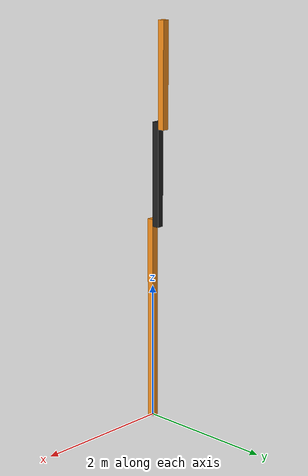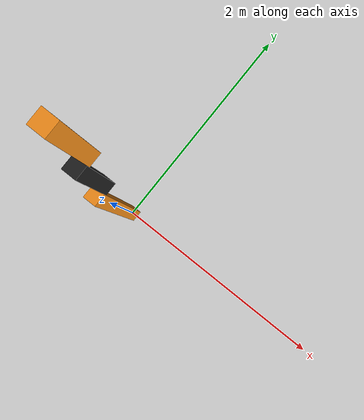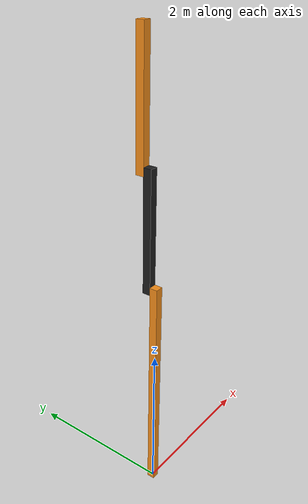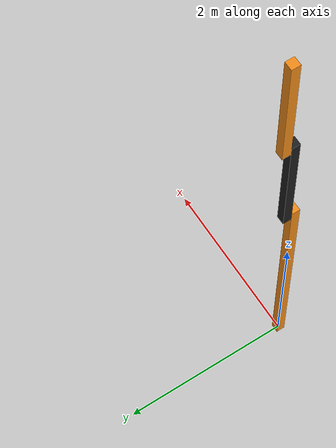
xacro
<?xml version="1.0"?>
<!-- Revolute-Revolute-Revolute Manipulator -->
<robot name="pendulum" xmlns:xacro="http://www.ros.org/wiki/xacro">

  <!-- Constants for robot dimensions -->
  <xacro:property name="PI" value="3.1415926535897931"/>
  <xacro:property name="width" value="0.1" /> <!-- Square dimensions (widthxwidth) of beams -->
  <xacro:property name="height1" value="3" /> <!-- Link 1 -->
  <xacro:property name="height2" value="1.5" /> <!-- Link 2 -->
  <xacro:property name="height3" value="1.5" /> <!-- Link 3 -->
  <xacro:property name="height4" value="1" /> <!-- Link 4 -->
  <xacro:property name="camera_link" value="0.05" /> <!-- Size of square 'camera' box -->
  <xacro:property name="axel_offset" value="0.05" /> <!-- Space btw top of beam and the each joint -->

  <!-- Import all Gazebo-customization elements, including Gazebo colors -->
  <xacro:include filename="$(find gmm_obs)/urdf/pendulum.gazebo" />
  <!-- Import Rviz colors -->
  <xacro:include filename="$(find rrbot_description)/urdf/materials.xacro" />

  <!-- Used for fixing robot to Gazebo 'base_link' -->
  <link name="world"/>

  <joint name="fixed" type="fixed">
    <parent link="world"/>
    <child link="link1"/>
  </joint>

  <!-- Base Link -->
  <link name="link1">
    <collision>
      <origin xyz="0 0 ${height1/2}" rpy="0 0 0"/>
      <geometry>
        <box size="${width} ${width} ${height1}"/>
      </geometry>
    </collision>

    <visual>
      <origin xyz="0 0 ${height1/2}" rpy="0 0 0"/>
      <geometry>
        <box size="${width} ${width} ${height1}"/>
      </geometry>
      <material name="orange"/>
    </visual>

    <inertial>
      <origin xyz="0 0 ${height1/2}" rpy="0 0 0"/>
      <mass value="1"/>
      <inertia ixx="1.0" ixy="0.0" ixz="0.0" iyy="1.0" iyz="0.0" izz="1.0"/>
    </inertial>
  </link>

  <joint name="joint1" type="continuous">
    <parent link="link1"/>
    <child link="link2"/>
    <origin xyz="0 ${width} ${height1 - axel_offset}" rpy="0 0 0"/>
    <axis xyz="0 1 0"/>
    <dynamics damping="2.0"/>
  </joint>

  <gazebo reference="link1">
    <material>Gazebo/Orange</material>
  </gazebo>

  <!-- Second Link -->
  <link name="link2">
    <collision>
      <origin xyz="0 0 ${height2/2 - axel_offset}" rpy="0 0 0"/>
      <geometry>
        <box size="${width} ${width} ${height2}"/>
      </geometry>
    </collision>

    <visual>
      <origin xyz="0 0 ${height2/2 - axel_offset}" rpy="0 0 0"/>
      <geometry>
        <box size="${width} ${width} ${height2}"/>
      </geometry>
      <material name="black"/>
    </visual>

    <inertial>
      <origin xyz="0 0 ${height2/2 - axel_offset}" rpy="0 0 0"/>
      <mass value="1"/>
      <inertia ixx="1.0" ixy="0.0" ixz="0.0" iyy="1.0" iyz="0.0" izz="1.0"/>
    </inertial>
  </link>

  <gazebo reference="link2">
    <mu1>0.2</mu1>
    <mu2>0.2</mu2>
    <material>Gazebo/Black</material>
  </gazebo>

  <joint name="joint2" type="continuous">
    <parent link="link2"/>
    <child link="link3"/>
    <origin xyz="0 ${width} ${height2 - axel_offset*2}" rpy="0 0 0"/>
    <axis xyz="0 1 0"/>
    <dynamics damping="2.0"/>
  </joint>

  <!-- Third Link -->
  <link name="link3">
    <collision name="link_collision">
      <origin xyz="0 0 ${height3/2 - axel_offset}" rpy="0 0 0"/>
      <geometry>
        <box size="${width} ${width} ${height3}"/>
      </geometry>
    </collision>

    <visual>
      <origin xyz="0 0 ${height3/2 - axel_offset}" rpy="0 0 0"/>
      <geometry>
        <box size="${width} ${width} ${height3}"/>
      </geometry>
      <material name="orange"/>
    </visual>

    <inertial>
      <origin xyz="0 0 ${height3/2 - axel_offset}" rpy="0 0 0"/>
      <mass value="1"/>
      <inertia ixx="1.0" ixy="0.0" ixz="0.0" iyy="1.0" iyz="0.0" izz="1.0"/>
    </inertial>
  </link>

  <gazebo reference="link3">
    <mu1>0.2</mu1>
    <mu2>0.2</mu2>
    <material>Gazebo/Orange</material>
  </gazebo>

  <transmission name="tran1">
    <type>transmission_interface/SimpleTransmission</type>
    <joint name="joint1">
      <hardwareInterface>EffortJointInterface</hardwareInterface>
    </joint>
    <actuator name="motor1">
      <hardwareInterface>EffortJointInterface</hardwareInterface>
      <mechanicalReduction>1</mechanicalReduction>
    </actuator>
  </transmission>

  <transmission name="tran2">
    <type>transmission_interface/SimpleTransmission</type>
    <joint name="joint2">
      <hardwareInterface>EffortJointInterface</hardwareInterface>
    </joint>
    <actuator name="motor2">
      <hardwareInterface>EffortJointInterface</hardwareInterface>
      <mechanicalReduction>1</mechanicalReduction>
    </actuator>
  </transmission>

</robot>
